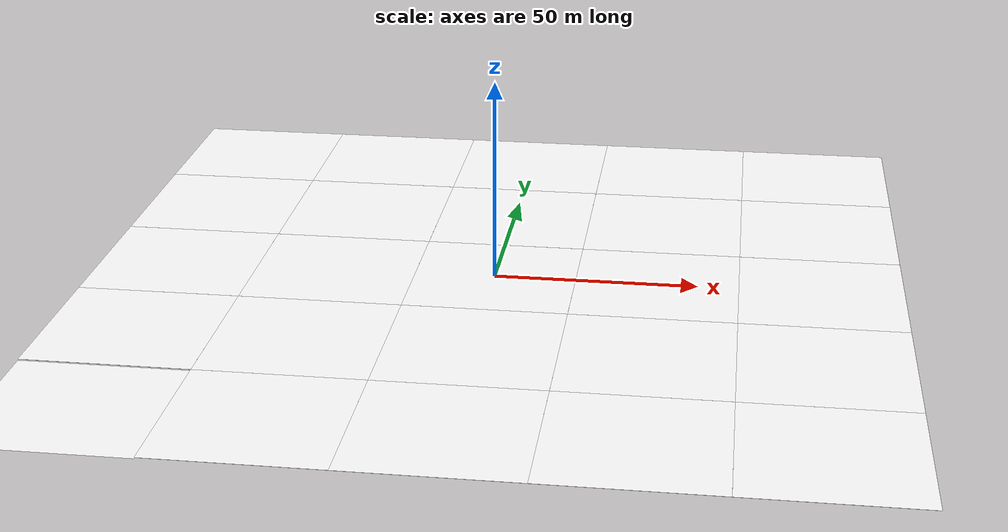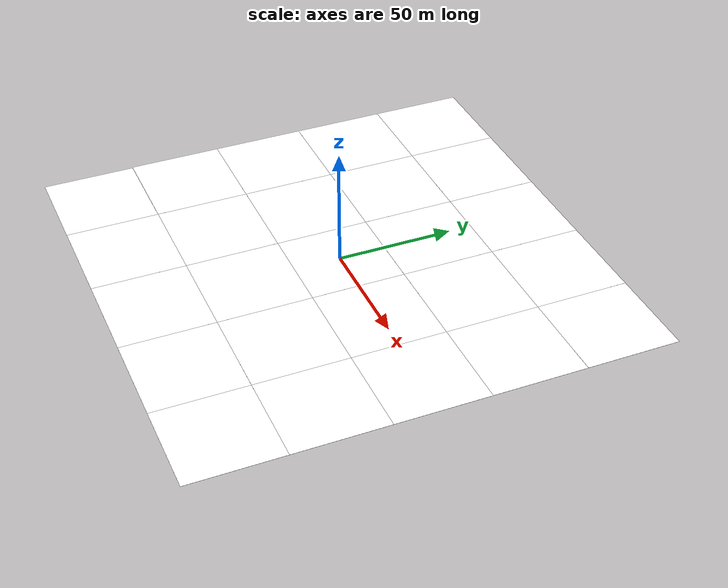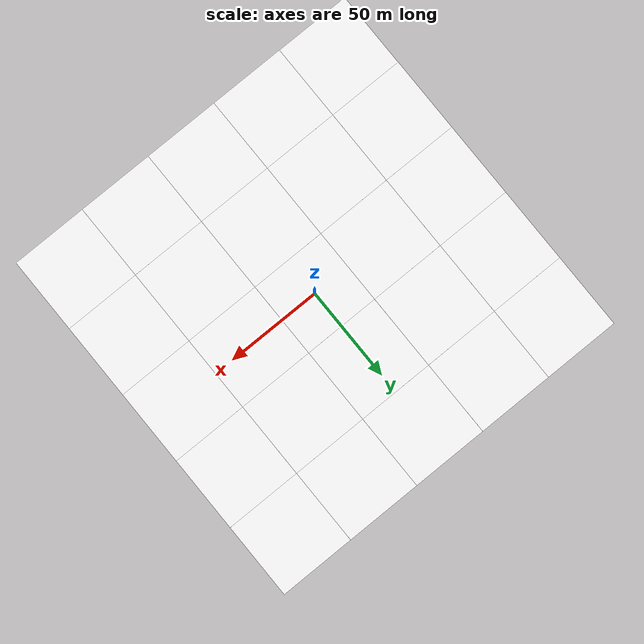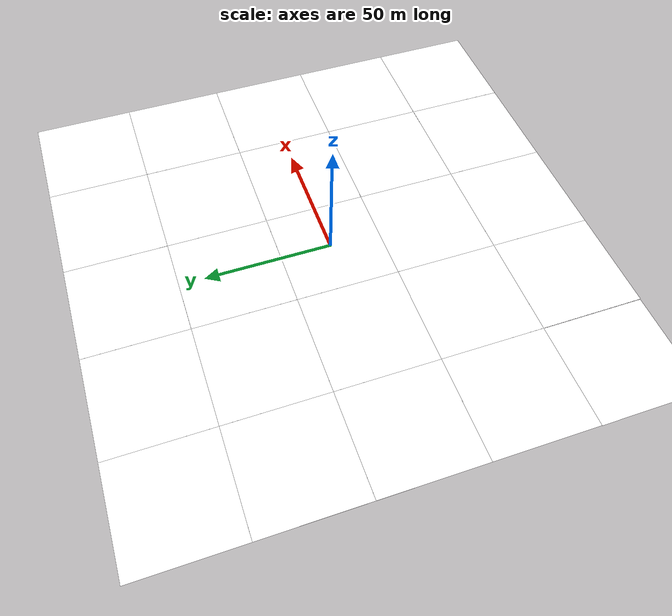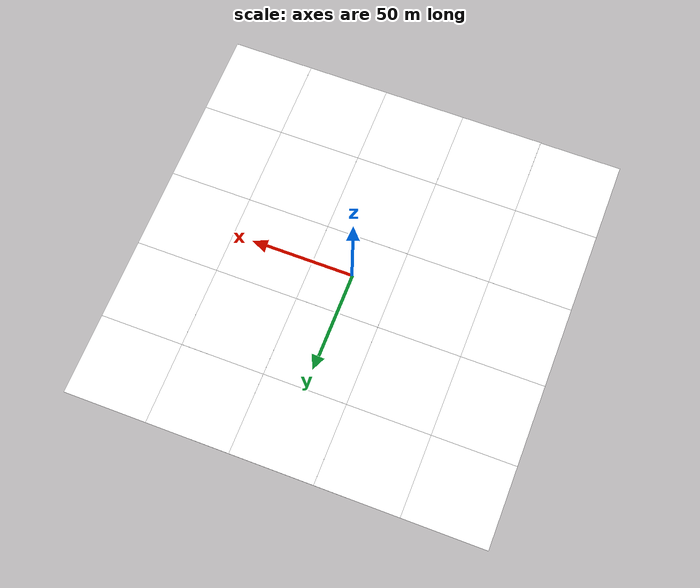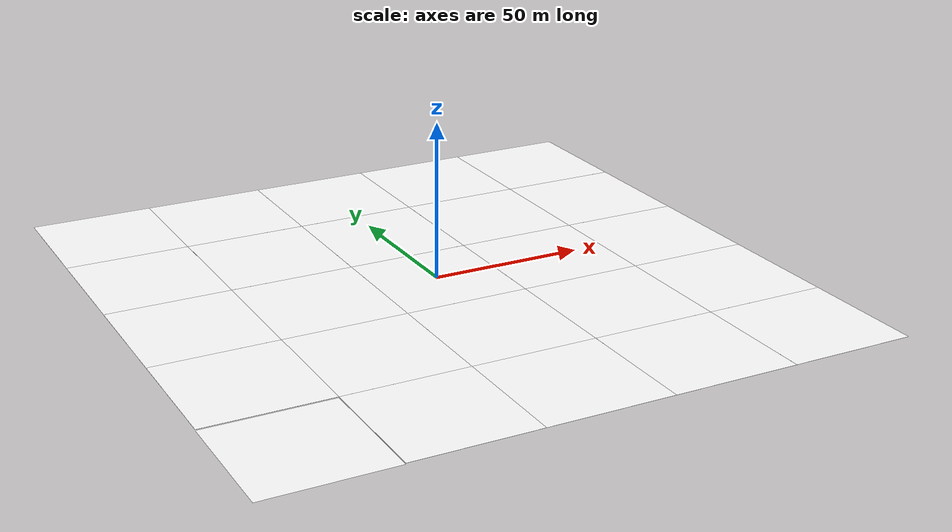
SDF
<sdf version="1.9">
 <world name="hatchback_moving">
  <physics type="ode">
   <max_step_size>0.004</max_step_size>
   <real_time_factor>1.0</real_time_factor>
   <real_time_update_rate>250</real_time_update_rate>
  </physics>
  <gravity>0 0 -9.8</gravity>
  <magnetic_field>6e-06 2.3e-05 -4.2e-05</magnetic_field>
  <atmosphere type="adiabatic"/>
  <scene>
   <grid>false</grid>
   <ambient>0.4 0.4 0.4 1</ambient>
   <background>0.7 0.7 0.7 1</background>
   <shadows>true</shadows>
  </scene>
  <model name="ground_plane">
   <static>true</static>
   <link name="link">
    <collision name="collision">
     <geometry><plane><normal>0 0 1</normal><size>200 200</size></plane></geometry>
    </collision>
    <inertial>
     <mass>1</mass>
     <inertia><ixx>1</ixx><ixy>0</ixy><ixz>0</ixz><iyy>1</iyy><iyz>0</iyz><izz>1</izz></inertia>
    </inertial>
   </link>
  </model>
  <include><uri>model://grass_ground</uri><name>grass_ground</name></include>
  <light name="sunUTC" type="directional">
   <pose>0 0 500 0 -0 0</pose>
   <intensity>1</intensity>
   <direction>0.001 0.625 -0.78</direction>
   <diffuse>0.904 0.904 0.904 1</diffuse>
   <specular>0.271 0.271 0.271 1</specular>
   <attenuation><range>2000</range><linear>0</linear><constant>1</constant><quadratic>0</quadratic></attenuation>
   <spot><inner_angle>0</inner_angle><outer_angle>0</outer_angle><falloff>0</falloff></spot>
  </light>
  <spherical_coordinates>
   <surface_model>EARTH_WGS84</surface_model>
   <world_frame_orientation>ENU</world_frame_orientation>
   <latitude_deg>47.397971057728974</latitude_deg>
   <longitude_deg>8.546163739800146</longitude_deg>
   <elevation>0</elevation>
  </spherical_coordinates>
 </world>
</sdf>

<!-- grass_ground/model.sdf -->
<sdf version="1.9">
  <model name="grass_ground">
    <static>true</static>

    <include>
      <uri>model://grass_patch</uri>
      <name>tile_0</name>
      <pose>-80.000 -80.000 0.000 0.000 0.000 0.000</pose>
    </include>
    <include>
      <uri>model://grass_patch</uri>
      <name>tile_1</name>
      <pose>-40.000 -80.000 0.000 0.000 0.000 3.142</pose>
    </include>
    <include>
      <uri>model://grass_patch</uri>
      <name>tile_2</name>
      <pose>0.000 -80.000 0.000 0.000 0.000 1.571</pose>
    </include>
    <include>
      <uri>model://grass_patch</uri>
      <name>tile_3</name>
      <pose>40.000 -80.000 0.000 0.000 0.000 4.712</pose>
    </include>
    <include>
      <uri>model://grass_patch</uri>
      <name>tile_4</name>
      <pose>80.000 -80.000 0.000 0.000 0.000 3.142</pose>
    </include>

    <include>
      <uri>model://grass_patch</uri>
      <name>tile_5</name>
      <pose>-80.000 -40.000 0.000 0.000 0.000 4.712</pose>
    </include>
    <include>
      <uri>model://grass_patch</uri>
      <name>tile_6</name>
      <pose>-40.000 -40.000 0.000 0.000 0.000 1.571</pose>
    </include>
    <include>
      <uri>model://grass_patch</uri>
      <name>tile_7</name>
      <pose>0.000 -40.000 0.000 0.000 0.000 0.000</pose>
    </include>
    <include>
      <uri>model://grass_patch</uri>
      <name>tile_8</name>
      <pose>40.000 -40.000 0.000 0.000 0.000 3.142</pose>
    </include>
    <include>
      <uri>model://grass_patch</uri>
      <name>tile_9</name>
      <pose>80.000 -40.000 0.000 0.000 0.000 1.571</pose>
    </include>

    <include>
      <uri>model://grass_patch</uri>
      <name>tile_10</name>
      <pose>-80.000 0.000 0.000 0.000 0.000 3.142</pose>
    </include>
    <include>
      <uri>model://grass_patch</uri>
      <name>tile_11</name>
      <pose>-40.000 0.000 0.000 0.000 0.000 0.000</pose>
    </include>
    <include>
      <uri>model://grass_patch</uri>
      <name>tile_12</name>
      <pose>0.000 0.000 0.000 0.000 0.000 4.712</pose>
    </include>
    <include>
      <uri>model://grass_patch</uri>
      <name>tile_13</name>
      <pose>40.000 0.000 0.000 0.000 0.000 1.571</pose>
    </include>
    <include>
      <uri>model://grass_patch</uri>
      <name>tile_14</name>
      <pose>80.000 0.000 0.000 0.000 0.000 0.000</pose>
    </include>

    <include>
      <uri>model://grass_patch</uri>
      <name>tile_15</name>
      <pose>-80.000 40.000 0.000 0.000 0.000 1.571</pose>
    </include>
    <include>
      <uri>model://grass_patch</uri>
      <name>tile_16</name>
      <pose>-40.000 40.000 0.000 0.000 0.000 4.712</pose>
    </include>
    <include>
      <uri>model://grass_patch</uri>
      <name>tile_17</name>
      <pose>0.000 40.000 0.000 0.000 0.000 3.142</pose>
    </include>
    <include>
      <uri>model://grass_patch</uri>
      <name>tile_18</name>
      <pose>40.000 40.000 0.000 0.000 0.000 0.000</pose>
    </include>
    <include>
      <uri>model://grass_patch</uri>
      <name>tile_19</name>
      <pose>80.000 40.000 0.000 0.000 0.000 4.712</pose>
    </include>

    <include>
      <uri>model://grass_patch</uri>
      <name>tile_20</name>
      <pose>-80.000 80.000 0.000 0.000 0.000 0.000</pose>
    </include>
    <include>
      <uri>model://grass_patch</uri>
      <name>tile_21</name>
      <pose>-40.000 80.000 0.000 0.000 0.000 1.571</pose>
    </include>
    <include>
      <uri>model://grass_patch</uri>
      <name>tile_22</name>
      <pose>0.000 80.000 0.000 0.000 0.000 4.712</pose>
    </include>
    <include>
      <uri>model://grass_patch</uri>
      <name>tile_23</name>
      <pose>40.000 80.000 0.000 0.000 0.000 3.142</pose>
    </include>
    <include>
      <uri>model://grass_patch</uri>
      <name>tile_24</name>
      <pose>80.000 80.000 0.000 0.000 0.000 1.571</pose>
    </include>
  </model>
</sdf>

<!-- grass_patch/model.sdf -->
<sdf version="1.9">
  <model name="grass_patch">
    <static>true</static>
    <link name="link">
      <visual name="visual">
        <cast_shadows>false</cast_shadows>
        <geometry><plane><normal>0 0 1</normal><size>40 40</size></plane></geometry>
        <material>
          <diffuse>1.0 1.0 1.0</diffuse>
          <specular>0.1 0.1 0.1</specular>
          <pbr>
            <metal>
              <albedo_map>model://grass_field/materials/textures/grass_dry.png</albedo_map>
              <normal_map>model://grass_field/materials/textures/grass_dry.png</normal_map>
            </metal>
          </pbr>
        </material>
      </visual>
    </link>
  </model>
</sdf>
